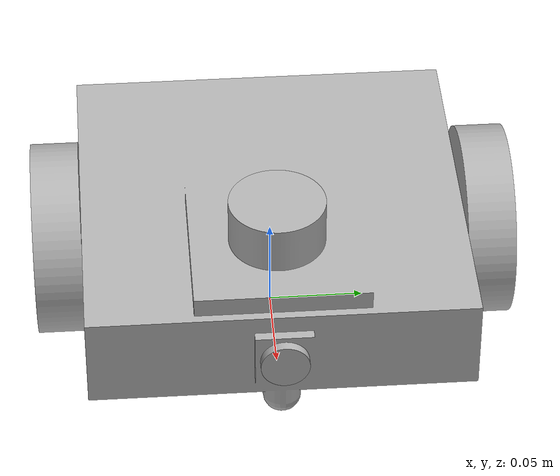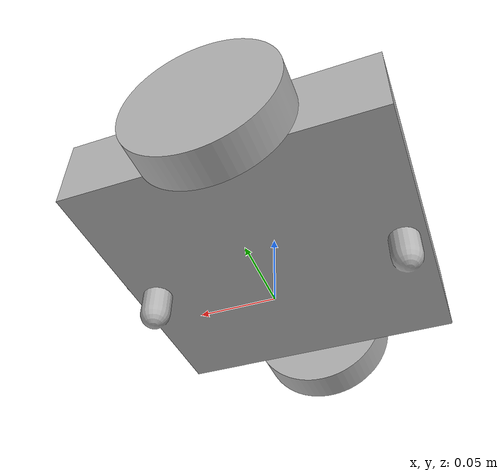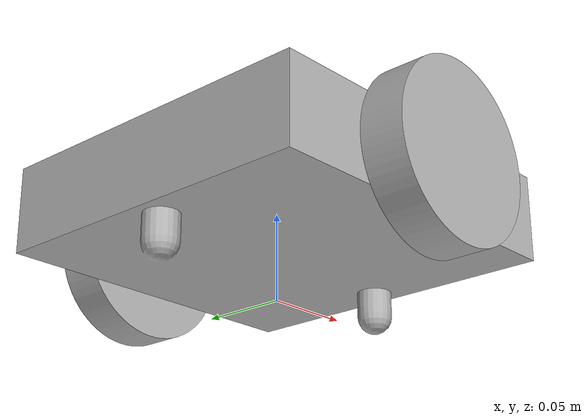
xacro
<?xml version="1.0" ?>
<robot name="navogenius2" xmlns:xacro="http://www.ros.org/wiki/xacro">

<xacro:include filename="$(find navogenius2_description)/urdf/materials.xacro" />
<xacro:include filename="$(find navogenius2_description)/urdf/navogenius2.trans" />
<xacro:include filename="$(find navogenius2_description)/urdf/navogenius2.gazebo" />
<link name="base_link">
  <inertial>
    <origin xyz="0.0021680974414850173 -1.7331024210714764e-17 0.050925426287109714" rpy="0 0 0"/>
    <mass value="2.2250603822554904"/>
    <inertia ixx="0.007663" iyy="0.008025" izz="0.014613" ixy="-0.0" iyz="-0.0" ixz="-0.000126"/>
  </inertial>
  <visual>
    <origin xyz="0 0 0" rpy="0 0 0"/>
    <geometry>
      <mesh filename="file://$(find navogenius2_description)/meshes/base_link.stl" scale="0.001 0.001 0.001"/>
    </geometry>
    <material name="silver"/>
  </visual>
  <collision>
    <origin xyz="0 0 0" rpy="0 0 0"/>
    <geometry>
      <mesh filename="file://$(find navogenius2_description)/meshes/base_link.stl" scale="0.001 0.001 0.001"/>
    </geometry>
  </collision>
</link>

<link name="right_wheel_1">
  <inertial>
    <origin xyz="-5.790023100122029e-18 -0.012499999999999997 0.0" rpy="0 0 0"/>
    <mass value="0.1826050729899067"/>
    <inertia ixx="0.000124" iyy="0.000228" izz="0.000124" ixy="-0.0" iyz="0.0" ixz="0.0"/>
  </inertial>
  <visual>
    <origin xyz="-0.0 0.1 -0.05" rpy="0 0 0"/>
    <geometry>
      <mesh filename="file://$(find navogenius2_description)/meshes/right_wheel_1.stl" scale="0.001 0.001 0.001"/>
    </geometry>
    <material name="silver"/>
  </visual>
  <collision>
    <origin xyz="-0.0 0.1 -0.05" rpy="0 0 0"/>
    <geometry>
      <mesh filename="file://$(find navogenius2_description)/meshes/right_wheel_1.stl" scale="0.001 0.001 0.001"/>
    </geometry>
  </collision>
</link>

<link name="left_wheel_1">
  <inertial>
    <origin xyz="-5.790023100122029e-18 0.012499999999999997 0.0" rpy="0 0 0"/>
    <mass value="0.1826050729899067"/>
    <inertia ixx="0.000124" iyy="0.000228" izz="0.000124" ixy="0.0" iyz="-0.0" ixz="0.0"/>
  </inertial>
  <visual>
    <origin xyz="-0.0 -0.1 -0.05" rpy="0 0 0"/>
    <geometry>
      <mesh filename="file://$(find navogenius2_description)/meshes/left_wheel_1.stl" scale="0.001 0.001 0.001"/>
    </geometry>
    <material name="silver"/>
  </visual>
  <collision>
    <origin xyz="-0.0 -0.1 -0.05" rpy="0 0 0"/>
    <geometry>
      <mesh filename="file://$(find navogenius2_description)/meshes/left_wheel_1.stl" scale="0.001 0.001 0.001"/>
    </geometry>
  </collision>
</link>

<link name="lidar_1">
  <inertial>
    <origin xyz="-4.82823586035741e-07 2.8950115500610146e-18 0.012499999999999997" rpy="0 0 0"/>
    <mass value="0.052032628325080946"/>
    <inertia ixx="1.1e-05" iyy="1.1e-05" izz="1.6e-05" ixy="0.0" iyz="0.0" ixz="-0.0"/>
  </inertial>
  <visual>
    <origin xyz="-0.050522 -0.0 -0.085" rpy="0 0 0"/>
    <geometry>
      <mesh filename="file://$(find navogenius2_description)/meshes/lidar_1.stl" scale="0.001 0.001 0.001"/>
    </geometry>
    <material name="silver"/>
  </visual>
  <collision>
    <origin xyz="-0.050522 -0.0 -0.085" rpy="0 0 0"/>
    <geometry>
      <mesh filename="file://$(find navogenius2_description)/meshes/lidar_1.stl" scale="0.001 0.001 0.001"/>
    </geometry>
  </collision>
</link>

<link name="camera_1">
  <inertial>
    <origin xyz="0.0025000000000000022 1.249000902703301e-18 4.957318955473022e-07" rpy="0 0 0"/>
    <mass value="0.0026016314162540487"/>
    <inertia ixx="0.0" iyy="0.0" izz="0.0" ixy="-0.0" iyz="0.0" ixz="0.0"/>
  </inertial>
  <visual>
    <origin xyz="-0.105 -0.0 -0.050475" rpy="0 0 0"/>
    <geometry>
      <mesh filename="file://$(find navogenius2_description)/meshes/camera_1.stl" scale="0.001 0.001 0.001"/>
    </geometry>
    <material name="silver"/>
  </visual>
  <collision>
    <origin xyz="-0.105 -0.0 -0.050475" rpy="0 0 0"/>
    <geometry>
      <mesh filename="file://$(find navogenius2_description)/meshes/camera_1.stl" scale="0.001 0.001 0.001"/>
    </geometry>
  </collision>
</link>

<joint name="base_footprint_joint" type="fixed">
        <parent link="base_link"/>
        <child link="base_footprint"/>
        <origin xyz="0 0 0" rpy="0 0 0"/>
    </joint>

    <link name="base_footprint">
</link>
<joint name="Revolute 1" type="continuous">
  <origin xyz="0.0 -0.1 0.05" rpy="0 0 0"/>
  <parent link="base_link"/>
  <child link="right_wheel_1"/>
  <axis xyz="0.0 1.0 0.0"/>
</joint>

<joint name="Revolute 2" type="continuous">
  <origin xyz="0.0 0.1 0.05" rpy="0 0 0"/>
  <parent link="base_link"/>
  <child link="left_wheel_1"/>
  <axis xyz="0.0 1.0 0.0"/>
</joint>

<joint name="Rigid 3" type="fixed">
  <origin xyz="0.050522 0.0 0.085" rpy="0 0 0"/>
  <parent link="base_link"/>
  <child link="lidar_1"/>
</joint>

<joint name="Rigid 4" type="fixed">
  <origin xyz="0.105 0.0 0.050475" rpy="0 0 0"/>
  <parent link="base_link"/>
  <child link="camera_1"/>
</joint>

</robot>

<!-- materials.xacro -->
<robot name="navogenius2" xmlns:xacro="http://www.ros.org/wiki/xacro" >

<material name="silver">
  <color rgba="0.700 0.700 0.700 1.000"/>
</material>

</robot>

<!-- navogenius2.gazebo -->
<robot name="navogenius2" xmlns:xacro="http://www.ros.org/wiki/xacro" >

<xacro:property name="body_color" value="Gazebo/Orange" />
<xacro:property name="wheel_color" value="Gazebo/Black" />
<xacro:property name="lidar_color" value="Gazebo/Blue" />
<gazebo>
  <plugin name="control" filename="libgazebo_ros_control.so"/>
</gazebo>
<gazebo reference="base_link">
  <material>${body_color}</material>
  <mu1>0.1</mu1>
  <mu2>0.1</mu2>
  <self_collide>true</self_collide>
  <gravity>true</gravity>
</gazebo>

<gazebo reference="right_wheel_1">
  <material>${wheel_color}</material>
  <mu1>150</mu1>
  <mu2>150</mu2>
  <self_collide>true</self_collide>
</gazebo>

<gazebo reference="left_wheel_1">
  <material>${wheel_color}</material>
  <mu1>150</mu1>
  <mu2>150</mu2>
  <self_collide>true</self_collide>
</gazebo>

<gazebo reference="lidar_1">
  <material>${lidar_color}</material>
  <mu1>0.2</mu1>
  <mu2>0.2</mu2>
  <self_collide>true</self_collide>
</gazebo>

<gazebo reference="camera_1">
  <material>${body_color}</material>
  <mu1>0.2</mu1>
  <mu2>0.2</mu2>
  <self_collide>true</self_collide>
</gazebo>

<ros2_control name="GazeboSystem" type="system">
        <hardware>
            <plugin>gazebo_ros2_control/GazeboSystem</plugin>
        </hardware>
        <joint name="Revolute 2">
            <command_interface name="velocity">
                <param name="min">-10</param>
                <param name="max">10</param>
            </command_interface>
            <state_interface name="velocity"/>
            <state_interface name="position"/>
        </joint>
        <joint name="Revolute 1">
            <command_interface name="velocity">
                <param name="min">-10</param>
                <param name="max">10</param>
            </command_interface>
            <state_interface name="velocity"/>
            <state_interface name="position"/>
        </joint>
    </ros2_control>

    <gazebo>
        <plugin name="gazebo_ros2_control" filename="libgazebo_ros2_control.so">
            <parameters>$(find navogenius2_description)/config/my_controllers.yaml</parameters>
        </plugin>
    </gazebo>

    <gazebo>
        <plugin name="diff_drive" filename="libgazebo_ros_diff_drive.so">

            <!-- Wheel Information -->
            <left_joint>Revolute_2</left_joint>
            <right_joint>Revolute_1</right_joint>
            <wheel_separation>0.2</wheel_separation>
            <wheel_diameter>0.1</wheel_diameter>

            <!-- Limits -->
            <max_wheel_torque>200</max_wheel_torque>
            <max_wheel_acceleration>10.0</max_wheel_acceleration>

            <!-- Output -->
            <odometry_frame>odom</odometry_frame>
            <robot_base_frame>base_link</robot_base_frame>

            <publish_odom>true</publish_odom>
            <publish_odom_tf>true</publish_odom_tf>
            <publish_wheel_tf>true</publish_wheel_tf>

        </plugin>
    </gazebo>

<gazebo reference="lidar_1">

        <sensor name="laser" type="ray">
            <pose> 0 0 0 0 0 0 </pose>
            <visualize>false</visualize>
            <update_rate>10</update_rate>
            <ray>
                <scan>
                    <horizontal>
                        <samples>360</samples>
                        <min_angle>-3.14</min_angle>
                        <max_angle>3.14</max_angle>
                    </horizontal>
                </scan>
                <range>
                    <min>0.3</min>
                    <max>12</max>
                </range>
            </ray>
            <plugin name="laser_controller" filename="libgazebo_ros_ray_sensor.so">
                <ros>
                    <argument>~/out:=scan</argument>
                </ros>
                <output_type>sensor_msgs/LaserScan</output_type>
                <frame_name>lidar_1</frame_name>
            </plugin>
        </sensor>
    </gazebo>

</robot>
